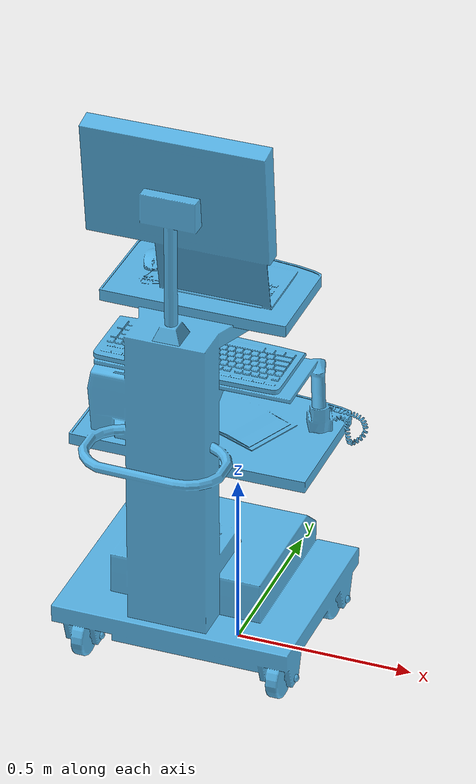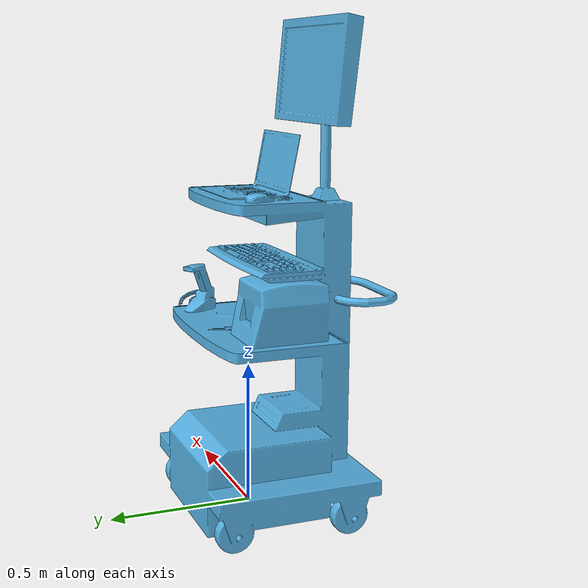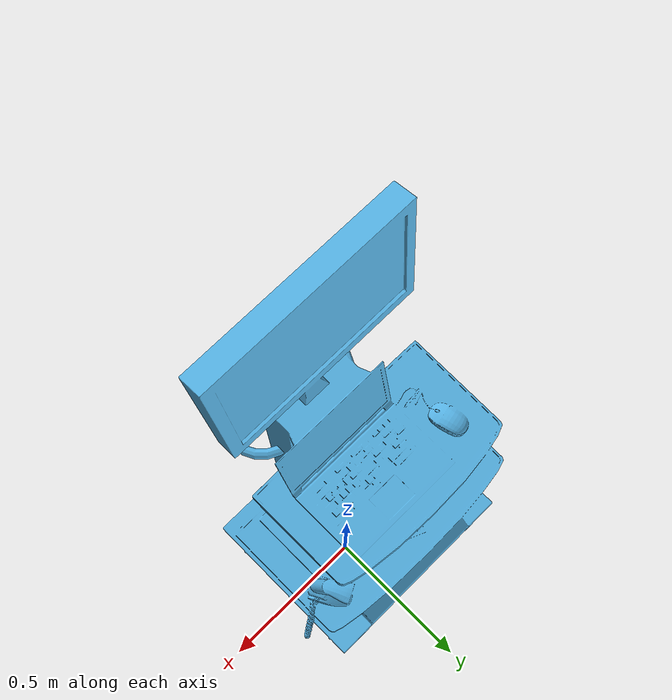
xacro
<?xml version="1.0" ?>
<robot name="computer" xmlns:xacro="http://www.ros.org/wiki/xacro">

  <xacro:arg name="computer_prefix" default="computer_"/>
  <xacro:arg name="computer_parent" default="world_interface"/>
  <xacro:arg name="mesh_path" default="$(find ros_industrial_support)"/>

  <xacro:arg name="x" default="0"/>
  <xacro:arg name="y" default="0"/>
  <xacro:arg name="z" default="0"/>
  <xacro:arg name="R" default="0"/>
  <xacro:arg name="P" default="0"/>
  <xacro:arg name="Y" default="0"/>

  <link name="world_interface" />

  <!-- URDF -->
  <xacro:include filename="$(find ros_industrial_support)/urdf/computer_mobile/computer.urdf.xacro"/>
  <xacro:computer_urdf computer_prefix="$(arg computer_prefix)" computer_parent="$(arg computer_parent)" mesh_path ="$(arg mesh_path)">
     <origin xyz="$(arg x) $(arg y) $(arg z)" rpy="$(arg R) $(arg P) $(arg Y)"/>
  </xacro:computer_urdf>

  <!-- Gazebo -->
  <xacro:include filename="$(find ros_industrial_support)/urdf/computer_mobile/computer.gazebo.xacro"/>
</robot>

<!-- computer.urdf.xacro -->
<robot name="computer_urdf" xmlns:xacro="http://www.ros.org/wiki/xacro">
    <xacro:macro name="computer_urdf" params="computer_parent computer_prefix mesh_path:='package://ros_industrial_support' *origin">

  <joint name="${computer_prefix}joint" type="fixed">
    <xacro:insert_block name="origin" />
    <parent link="${computer_parent}"/>
    <child link="${computer_prefix}origin"/>
  </joint>

    <!-- Links -->
    <link name="${computer_prefix}origin">
      <visual>
        <geometry>
          <mesh filename="${mesh_path}/meshes/computer_mobile/meshes/computer.dae" scale="0.01 0.01 0.01"/>
        </geometry>
      </visual>
      <collision>
        <geometry>
          <mesh filename="${mesh_path}/meshes/computer_mobile/meshes/computer.dae" scale="0.01 0.01 0.01"/>
        </geometry>
      </collision>
      <inertial>
        <inertia ixx="1.0" ixy="0" ixz="0"
                 iyy="1.0" iyz="0"
                 izz="1.0" />
        <mass value="100" />
      </inertial>
    </link>
  </xacro:macro>
</robot>
